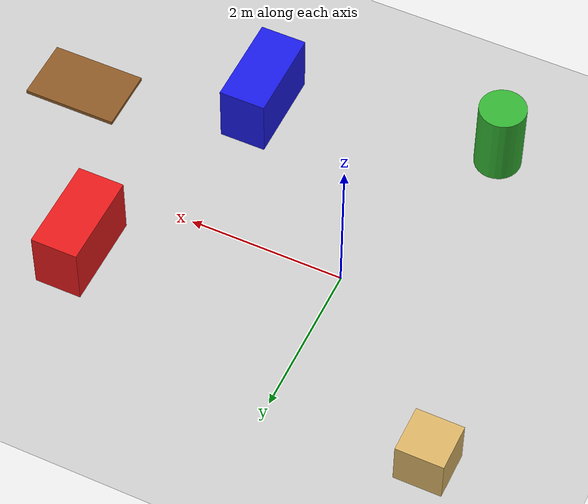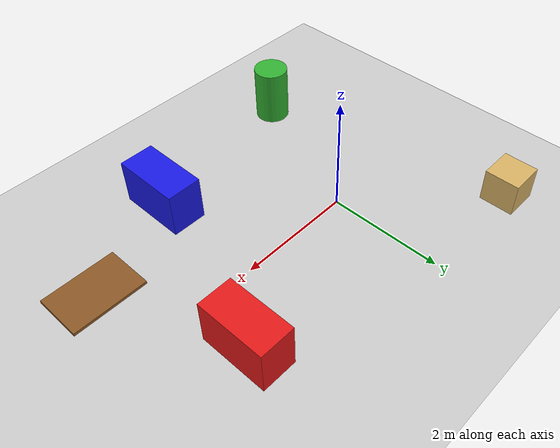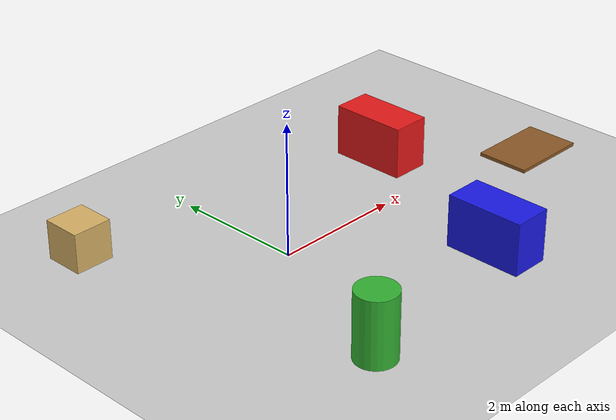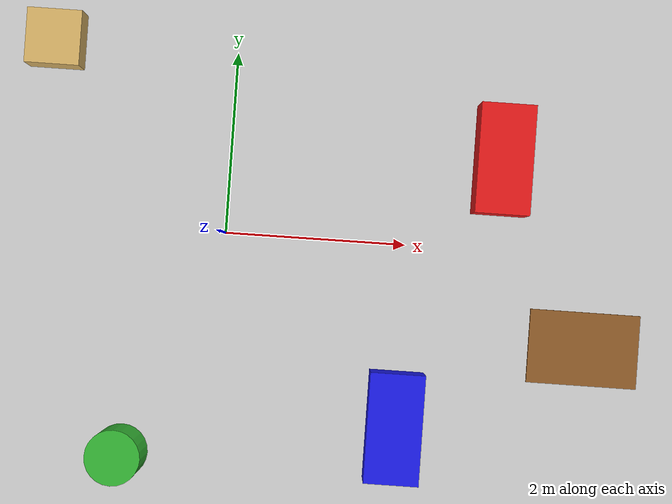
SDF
<?xml version="1.0"?>
<sdf version="1.8">
  <world name="default">
    <physics type="ode">
      <real_time_update_rate>1000.0</real_time_update_rate>
      <max_step_size>0.001</max_step_size>
      <real_time_factor>1</real_time_factor>
    </physics>

    <plugin filename="gz-sim-physics-system" name="gz::sim::systems::Physics"/>
    <plugin filename="gz-sim-user-commands-system" name="gz::sim::systems::UserCommands"/>
    <plugin filename="gz-sim-scene-broadcaster-system" name="gz::sim::systems::SceneBroadcaster"/>
    <plugin filename="gz-sim-sensors-system" name="gz::sim::systems::Sensors">
      <render_engine>ogre2</render_engine>
    </plugin>
    <plugin filename="gz-sim-imu-system" name="gz::sim::systems::Imu"/>

    <!-- Ground plane (local, no fuel download) -->
    <model name="ground_plane">
      <static>true</static>
      <link name="link">
        <collision name="collision">
          <geometry><plane><normal>0 0 1</normal><size>100 100</size></plane></geometry>
        </collision>
        <visual name="visual">
          <geometry><plane><normal>0 0 1</normal><size>100 100</size></plane></geometry>
          <material>
            <ambient>0.8 0.8 0.8 1</ambient>
            <diffuse>0.8 0.8 0.8 1</diffuse>
          </material>
        </visual>
      </link>
    </model>

    <!-- Sun -->
    <light name="sun" type="directional">
      <cast_shadows>true</cast_shadows>
      <pose>0 0 10 0 0 0</pose>
      <diffuse>1 1 1 1</diffuse>
      <specular>0.5 0.5 0.5 1</specular>
      <direction>-0.5 0.1 -0.9</direction>
    </light>

    <!-- Warehouse artifacts.
         Positioned to match location->pose map in fleet_orchestrator.py so
         navigation targets align with visible, detectable objects. -->

    <!-- shelf_row_7 : red box -->
    <model name="shelf_red">
      <static>true</static>
      <pose>3.0 1.0 0.4 0 0 0</pose>
      <link name="link">
        <collision name="collision">
          <geometry><box><size>0.6 1.2 0.8</size></box></geometry>
        </collision>
        <visual name="visual">
          <geometry><box><size>0.6 1.2 0.8</size></box></geometry>
          <material>
            <ambient>0.7 0.1 0.1 1</ambient>
            <diffuse>0.9 0.1 0.1 1</diffuse>
          </material>
        </visual>
      </link>
    </model>

    <!-- shelf_row_3 : blue box -->
    <model name="shelf_blue">
      <static>true</static>
      <pose>2.0 -2.0 0.4 0 0 0</pose>
      <link name="link">
        <collision name="collision">
          <geometry><box><size>0.6 1.2 0.8</size></box></geometry>
        </collision>
        <visual name="visual">
          <geometry><box><size>0.6 1.2 0.8</size></box></geometry>
          <material>
            <ambient>0.1 0.1 0.7 1</ambient>
            <diffuse>0.1 0.1 0.9 1</diffuse>
          </material>
        </visual>
      </link>
    </model>

    <!-- storage_area : yellow cardboard-like box -->
    <model name="storage_box">
      <static>true</static>
      <pose>-2.0 2.0 0.3 0 0 0</pose>
      <link name="link">
        <collision name="collision">
          <geometry><box><size>0.6 0.6 0.6</size></box></geometry>
        </collision>
        <visual name="visual">
          <geometry><box><size>0.6 0.6 0.6</size></box></geometry>
          <material>
            <ambient>0.75 0.6 0.3 1</ambient>
            <diffuse>0.85 0.7 0.4 1</diffuse>
          </material>
        </visual>
      </link>
    </model>

    <!-- workstation_3 : table (thin top + 4 legs simplified as a slab) -->
    <model name="workstation_table">
      <static>true</static>
      <pose>4.0 -1.0 0.5 0 0 0</pose>
      <link name="link">
        <collision name="collision">
          <geometry><box><size>1.2 0.8 0.05</size></box></geometry>
        </collision>
        <visual name="visual">
          <geometry><box><size>1.2 0.8 0.05</size></box></geometry>
          <material>
            <ambient>0.4 0.25 0.1 1</ambient>
            <diffuse>0.55 0.35 0.15 1</diffuse>
          </material>
        </visual>
      </link>
    </model>

    <!-- landmark : barrel (cylinder) -->
    <model name="barrel">
      <static>true</static>
      <pose>-1.0 -2.5 0.5 0 0 0</pose>
      <link name="link">
        <collision name="collision">
          <geometry><cylinder><radius>0.3</radius><length>1.0</length></cylinder></geometry>
        </collision>
        <visual name="visual">
          <geometry><cylinder><radius>0.3</radius><length>1.0</length></cylinder></geometry>
          <material>
            <ambient>0.2 0.5 0.2 1</ambient>
            <diffuse>0.2 0.7 0.2 1</diffuse>
          </material>
        </visual>
      </link>
    </model>

  </world>
</sdf>
